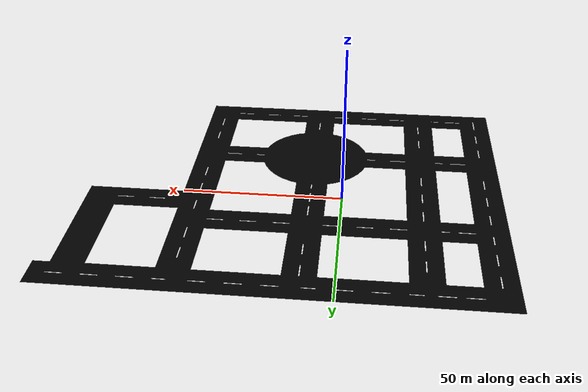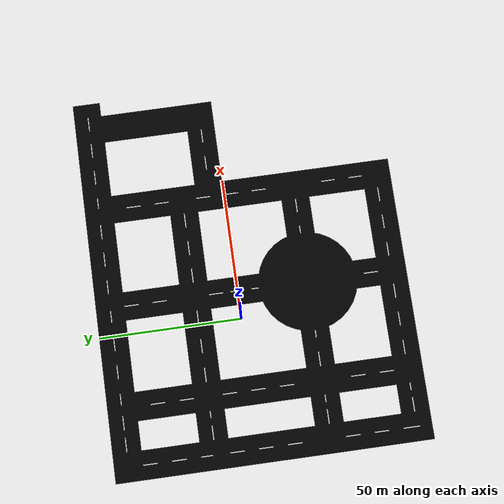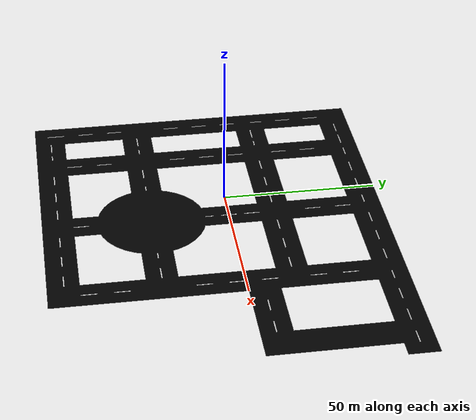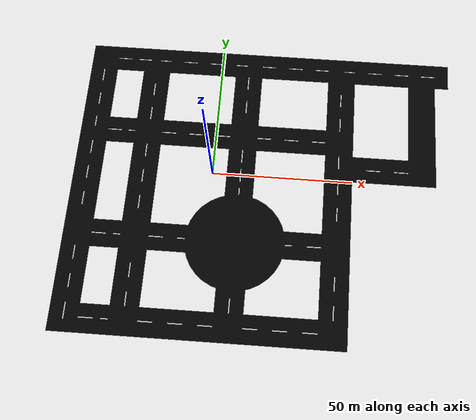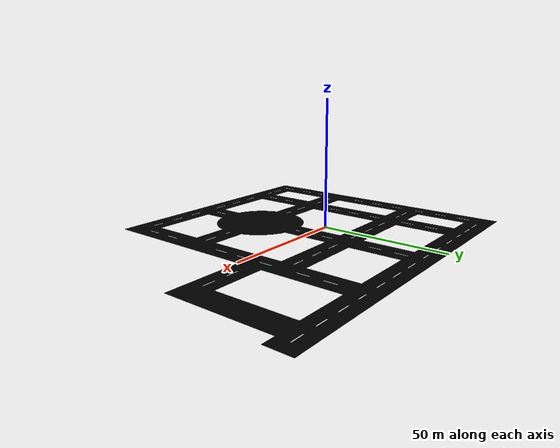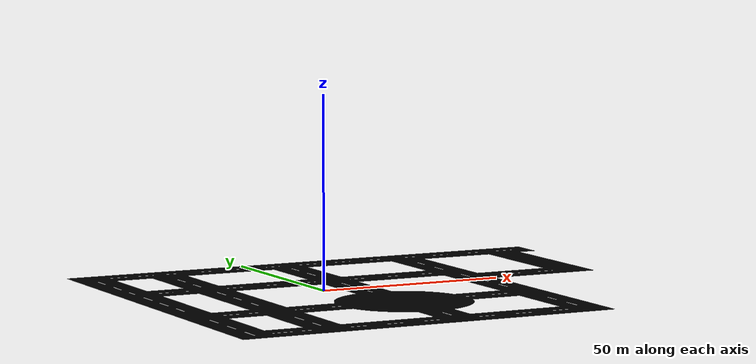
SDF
<?xml version="1.0"?>
<sdf version="1.6">
  <model name="siyahlar">
    <static>true</static>
    <link name="link">
      <visual name="visual">
        <geometry><mesh><scale>0.25 0.25 0.25</scale>
            <uri>model://siyahlar/meshes/siyahlar.dae</uri></mesh></geometry>
        <material><ambient>0 0 0 1</ambient><diffuse>0 0 0 1</diffuse></material>
      </visual>
      <collision name="collision">
        <geometry><mesh><scale>0.25 0.25 0.25</scale>
            <uri>model://siyahlar/meshes/siyahlar.dae</uri></mesh></geometry>
      </collision>
    </link>
  </model>
</sdf>
